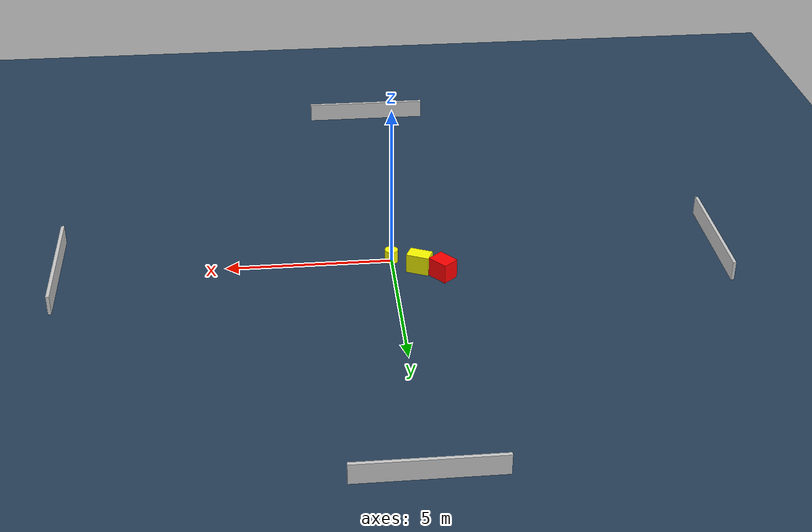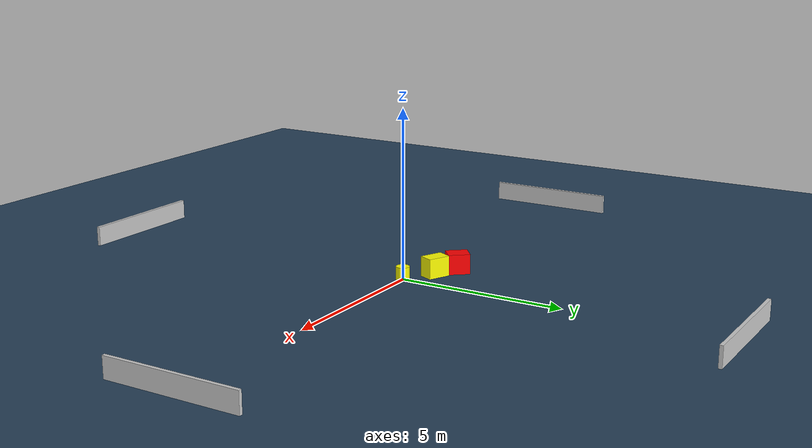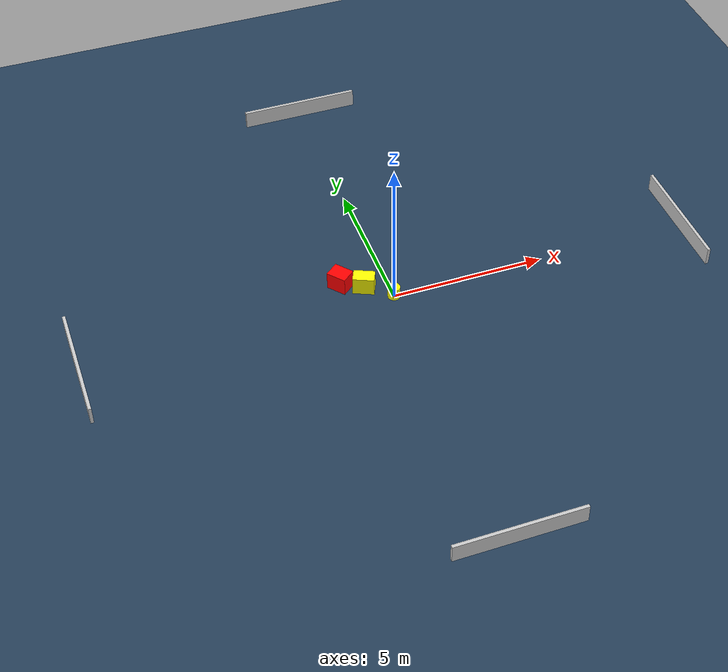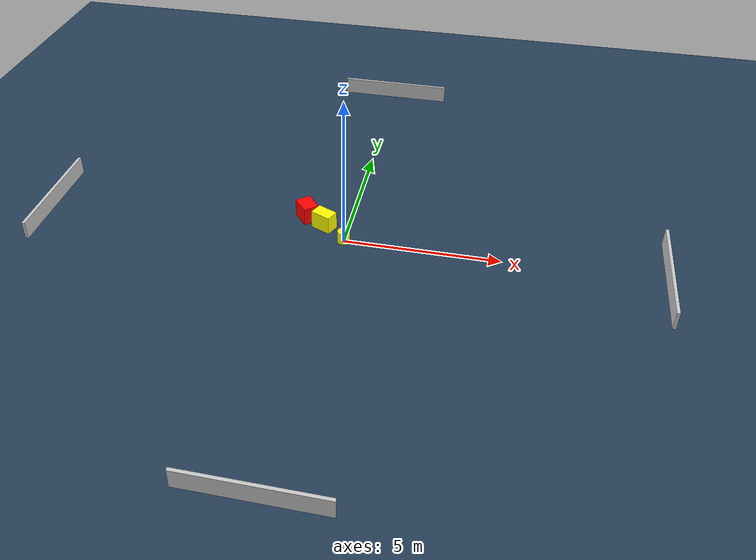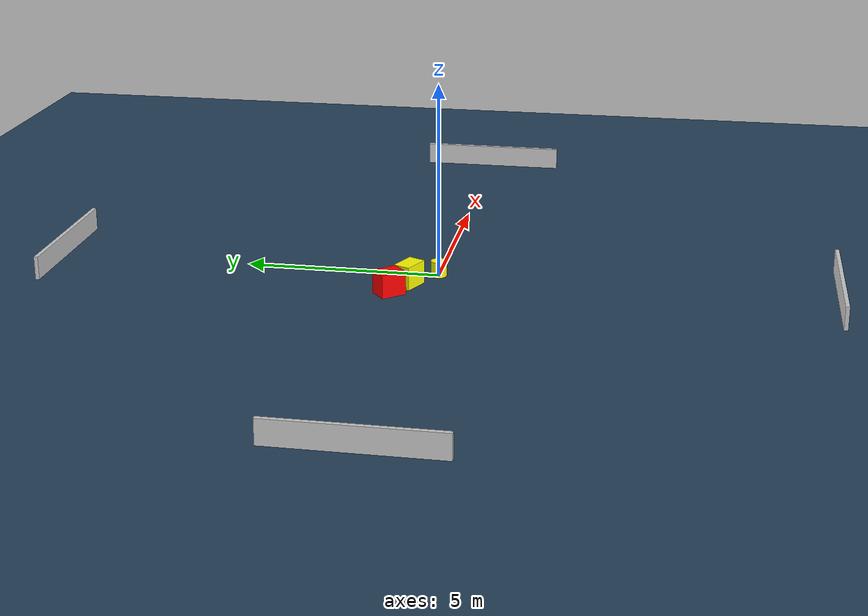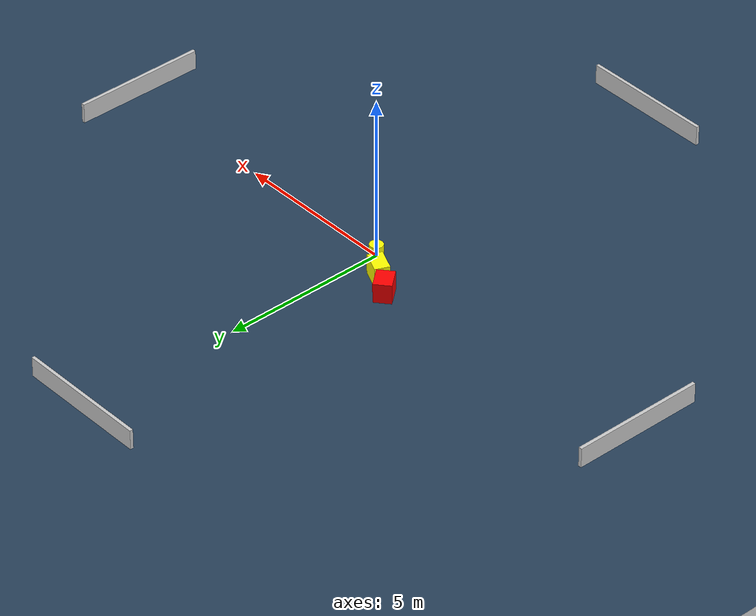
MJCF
<?xml version="1.0" ?>
<mujoco model="generated_environment">
  <option timestep="0.01" integrator="RK4" cone="elliptic"/>
  <default>
    <geom density="1"/>
  </default>
  <asset>
    <texture builtin="gradient" height="3072" name="skybox" rgb1="0.3 0.5 0.7" rgb2="0 0 0" type="skybox" width="512"/>
    <texture builtin="checker" height="300" name="groundplane" rgb1="0.2 0.3 0.4" rgb2="0.1 0.2 0.3" type="2d" width="300"/>
    <material name="groundplane" reflectance="0.2" texrepeat="5 5" texture="groundplane"/>
  </asset>
  <worldbody>
    <light dir="0 0 -1" directional="true" pos="0 0 1.5"/>
    <geom condim="3" friction="0.5 0.005 0.001" material="groundplane" name="floor" pos="0 0 0" size="0 0 0.05" type="plane"/>
    <body name="walls">
      <geom name="wall_1" condim="4" pos="-10.0 0.0 0.3" rgba="0.800000011920929 0.800000011920929 0.800000011920929 1.0" size="0.05 2.0 0.3" type="box"/>
      <geom name="wall_2" condim="4" pos="10.0 0.0 0.3" rgba="0.800000011920929 0.800000011920929 0.800000011920929 1.0" size="0.05 2.0 0.3" type="box"/>
      <geom name="wall_3" condim="4" pos="0.0 -10.0 0.3" rgba="0.800000011920929 0.800000011920929 0.800000011920929 1.0" size="2.0 0.05 0.3" type="box"/>
      <geom name="wall_4" condim="4" pos="0.0 10.0 0.3" rgba="0.800000011920929 0.800000011920929 0.800000011920929 1.0" size="2.0 0.05 0.3" type="box"/>
    </body>
    <body name="robot">
      <joint name="joint_x" type="slide" pos="0 0 0" axis="1 0 0"/>
      <joint name="joint_y" type="slide" pos="0 0 0" axis="0 1 0"/>
      <geom name="robot" type="cylinder" pos="0.0 0.0 0.2" size="0.2 0.2 0.0" mass="5.0" friction="1.0 0.005 0.0001" condim="4" rgba="1.0 1.0 0.0 1.0"/>
    </body>
    <body name="obstacle_1_movable">
      <geom name="obstacle_1_movable" condim="4" pos="-0.7848316980626439 0.6176646169311413 0.3" euler="0 0 245.6746112858318" friction="0.0 0.005 0.001" rgba="1.0 1.0 0.0 1.0" size="0.22088316241387967 0.34473759641690266 0.3" type="box" mass="0.1"/>
      <joint type="free"/>
    </body>
    <body name="obstacle_2_static">
      <geom name="obstacle_2_static" condim="4" pos="-1.4458688420021952 1.002913140541841 0.3" euler="0 0 129.61352896956578" friction="0.0 0.005 0.001" rgba="1.0 0.0 0.0 1.0" size="0.3279998822440665 0.2605520212575907 0.3" type="box"/>
    </body>
  </worldbody>
  <actuator>
    <motor name="actuator_x" joint="joint_x" gear="1" ctrlrange="-1 1"/>
    <motor name="actuator_y" joint="joint_y" gear="1" ctrlrange="-1 1"/>
  </actuator>
</mujoco>
